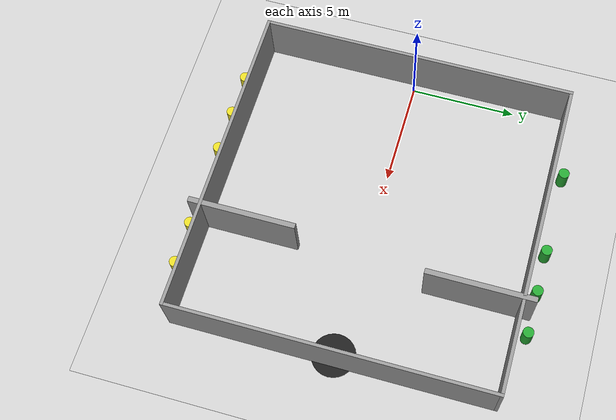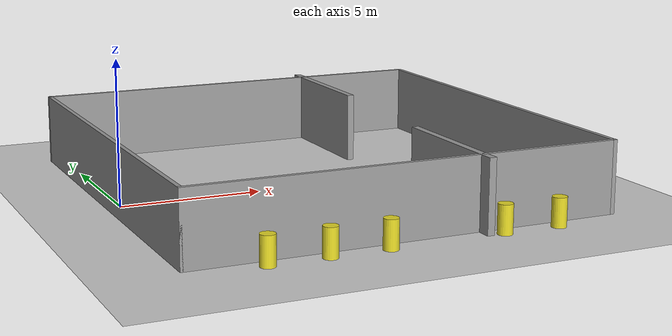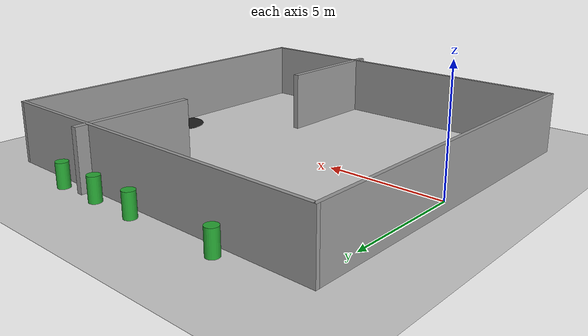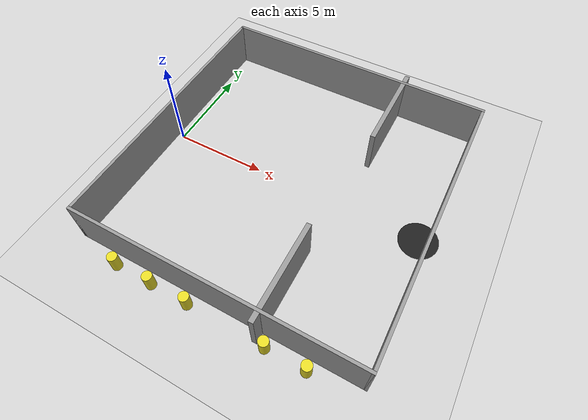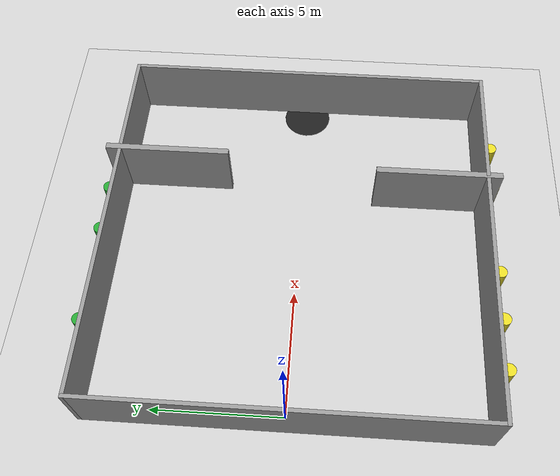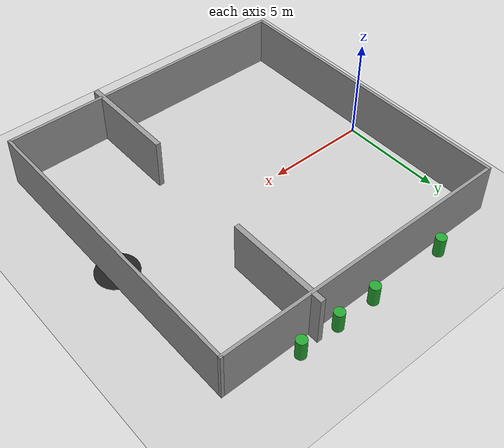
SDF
<sdf version="1.7">
 <world name="default">
  <gravity>0 0 -9.8</gravity>
  <magnetic_field>6e-06 2.3e-05 -4.2e-05</magnetic_field>
  <atmosphere type="adiabatic"/>
  <scene><ambient>0.4 0.4 0.4 1</ambient><background>0.7 0.7 0.7 1</background><shadows>0</shadows></scene>
  <audio><device>default</device></audio>
  <spherical_coordinates>
   <surface_model>EARTH_WGS84</surface_model>
   <latitude_deg>0</latitude_deg>
   <longitude_deg>0</longitude_deg>
   <elevation>0</elevation>
   <heading_deg>0</heading_deg>
  </spherical_coordinates>
  <physics type="ode">
   <max_step_size>0.001</max_step_size>
   <real_time_update_rate>1000.0</real_time_update_rate>
   <real_time_factor>1</real_time_factor>
   <ode>
    <solver>
     <type>quick</type>
     <iters>150</iters>
     <precon_iters>0</precon_iters>
     <sor>1.400000</sor>
     <use_dynamic_moi_rescaling>1</use_dynamic_moi_rescaling>
    </solver>
    <constraints>
     <cfm>0.00001</cfm>
     <erp>0.2</erp>
     <contact_max_correcting_vel>2000.000000</contact_max_correcting_vel>
     <contact_surface_layer>0.01000</contact_surface_layer>
    </constraints>
   </ode>
  </physics>
  <plugin name="gazebo_ros_state" filename="libgazebo_ros_state.so">
   <ros>
    <namespace>/gazebo_drl</namespace>
    <argument>model_states:=model_states_plug</argument>
    <argument>link_states:=link_states_plug</argument>
   </ros>
   <update_rate>30.0</update_rate>
  </plugin>
  <include><uri>model://sun</uri></include>
  <include><uri>model://ground_plane</uri></include>
  <include><uri>model://goal_area</uri><pose>14.0 0.0 0.0 0 0 0</pose></include>
  <include><uri>model://stage_4//wall_outler</uri><pose>7.0 0.0 0.0 0 0 0</pose></include>
  <include><uri>model://stage_4//wall_single_5m_2</uri><pose>10.0 5.5 0.0 0 0 1.5708</pose></include>
  <include><uri>model://stage_4//wall_single_5m_3</uri><pose>9.5 -5.5 0.0 0 0 1.5708</pose></include>
  <include>
   <uri>model://cylinder_obstacle_3</uri>
   <name>cylinder_obstacle_2</name>
   <pose>11.0 8.0 0.5 0.0 0.0 -1.5708</pose>
  </include>
  <include>
   <uri>model://cylinder_obstacle_3</uri>
   <name>cylinder_obstacle_3</name>
   <pose>9.0 8.0 0.5 0.0 0.0 -1.5708</pose>
  </include>
  <include>
   <uri>model://cylinder_obstacle_3</uri>
   <name>cylinder_obstacle_4</name>
   <pose>7.0 8.0 0.5 0.0 0.0 -1.5708</pose>
  </include>
  <include>
   <uri>model://cylinder_obstacle_3</uri>
   <name>cylinder_obstacle_6</name>
   <pose>3.0 8.0 0.5 0.0 0.0 -1.5708</pose>
  </include>
  <include>
   <uri>model://cylinder_obstacle_4</uri>
   <name>cylinder_obstacle_8</name>
   <pose>12.0 -8.0 0.5 0.0 0.0 1.5708</pose>
  </include>
  <include>
   <uri>model://cylinder_obstacle_4</uri>
   <name>cylinder_obstacle_9</name>
   <pose>10.0 -8.0 0.5 0.0 0.0 1.5708</pose>
  </include>
  <include>
   <uri>model://cylinder_obstacle_4</uri>
   <name>cylinder_obstacle_11</name>
   <pose>6.0 -8.0 0.5 0.0 0.0 1.5708</pose>
  </include>
  <include>
   <uri>model://cylinder_obstacle_4</uri>
   <name>cylinder_obstacle_12</name>
   <pose>4.0 -8.0 0.5 0.0 0.0 1.5708</pose>
  </include>
  <include>
   <uri>model://cylinder_obstacle_4</uri>
   <name>cylinder_obstacle_13</name>
   <pose>2.0 -8.0 0.5 0.0 0.0 1.5708</pose>
  </include>
 </world>
</sdf>

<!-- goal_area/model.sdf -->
<sdf version='1.7'>
  <model name='goal_area'>
    <link name='link_1'>
      <inertial>
        <mass>1</mass>
        <inertia>
          <ixx>0.145833</ixx>
          <ixy>0</ixy>
          <ixz>0</ixz>
          <iyy>0.145833</iyy>
          <iyz>0</iyz>
          <izz>0.125</izz>
        </inertia>
        <pose>0 0 0 0 -0 0</pose>
      </inertial>
      <pose>-0 0 0 0 -0 0</pose>
      <gravity>1</gravity>
      <self_collide>0</self_collide>
      <kinematic>0</kinematic>
      <enable_wind>0</enable_wind>
      <visual name='visual'>
        <pose>0 0 0 0 -0 0</pose>
        <geometry>
          <cylinder>
            <radius>1.0</radius>
            <length>0.01</length>
          </cylinder>
        </geometry>
        <material>
          <script>
            <uri>file://media/materials/scripts/gazebo.material</uri>
            <name>Gazebo/Black</name>
          </script>
        </material>
        <transparency>0</transparency>
        <cast_shadows>0</cast_shadows>
      </visual>
      <collision name='collision'>
        <laser_retro>0</laser_retro>
        <max_contacts>10</max_contacts>
        <pose>0 0 0 0 -0 0</pose>
        <geometry>
          <cylinder>
            <radius>0.001</radius>
            <length>0.001</length>
          </cylinder>
        </geometry>
        <surface>
          <friction>
            <ode>
              <mu>1</mu>
              <mu2>1</mu2>
              <fdir1>0 0 0</fdir1>
              <slip1>0</slip1>
              <slip2>0</slip2>
            </ode>
            <torsional>
              <coefficient>1</coefficient>
              <patch_radius>0</patch_radius>
              <surface_radius>0</surface_radius>
              <use_patch_radius>1</use_patch_radius>
              <ode>
                <slip>0</slip>
              </ode>
            </torsional>
          </friction>
          <bounce>
            <restitution_coefficient>0</restitution_coefficient>
            <threshold>1e+06</threshold>
          </bounce>
          <contact>
            <collide_without_contact>0</collide_without_contact>
            <collide_without_contact_bitmask>1</collide_without_contact_bitmask>
            <collide_bitmask>1</collide_bitmask>
            <ode>
              <soft_cfm>0</soft_cfm>
              <soft_erp>0.2</soft_erp>
              <kp>1e+13</kp>
              <kd>1</kd>
              <max_vel>0.01</max_vel>
              <min_depth>0</min_depth>
            </ode>
            <bullet>
              <split_impulse>1</split_impulse>
              <split_impulse_penetration_threshold>-0.01</split_impulse_penetration_threshold>
              <soft_cfm>0</soft_cfm>
              <soft_erp>0.2</soft_erp>
              <kp>1e+13</kp>
              <kd>1</kd>
            </bullet>
          </contact>
        </surface>
      </collision>
    </link>
    <static>0</static>
    <allow_auto_disable>1</allow_auto_disable>
  </model>
</sdf>

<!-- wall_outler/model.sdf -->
<sdf version='1.7'>
  <model name='wall_outler'>
    <pose>0 0 0 0 -0 0</pose>
    <link name='Wall_1'>
      <collision name='Wall_1_Collision'>
        <geometry>
          <box>
            <size>15 0.15 2.5</size>
          </box>
        </geometry>
        <pose>0 0 1.25 0 -0 0</pose>
      </collision>
      <visual name='Wall_1_Visual'>
        <pose>0 0 1.25 0 -0 0</pose>
        <geometry>
          <box>
            <size>15 0.15 2.5</size>
          </box>
        </geometry>
        <material>
          <script>
            <uri>file://media/materials/scripts/gazebo.material</uri>
            <name>Gazebo/Grey</name>
          </script>
          <ambient>1 1 1 1</ambient>
        </material>
        <meta>
          <layer>0</layer>
        </meta>
      </visual>
      <pose>-0 -7.425 0 0 -0 0</pose>
    </link>
    <link name='Wall_2'>
      <collision name='Wall_2_Collision'>
        <geometry>
          <box>
            <size>15 0.15 2.5</size>
          </box>
        </geometry>
        <pose>0 0 1.25 0 -0 0</pose>
      </collision>
      <visual name='Wall_2_Visual'>
        <pose>0 0 1.25 0 -0 0</pose>
        <geometry>
          <box>
            <size>15 0.15 2.5</size>
          </box>
        </geometry>
        <material>
          <script>
            <uri>file://media/materials/scripts/gazebo.material</uri>
            <name>Gazebo/Grey</name>
          </script>
          <ambient>1 1 1 1</ambient>
        </material>
        <meta>
          <layer>0</layer>
        </meta>
      </visual>
      <pose>7.425 -0 0 0 -0 1.5708</pose>
    </link>
    <link name='Wall_3'>
      <collision name='Wall_3_Collision'>
        <geometry>
          <box>
            <size>15 0.15 2.5</size>
          </box>
        </geometry>
        <pose>0 0 1.25 0 -0 0</pose>
      </collision>
      <visual name='Wall_3_Visual'>
        <pose>0 0 1.25 0 -0 0</pose>
        <geometry>
          <box>
            <size>15 0.15 2.5</size>
          </box>
        </geometry>
        <material>
          <script>
            <uri>file://media/materials/scripts/gazebo.material</uri>
            <name>Gazebo/Grey</name>
          </script>
          <ambient>1 1 1 1</ambient>
        </material>
        <meta>
          <layer>0</layer>
        </meta>
      </visual>
      <pose>-0 7.425 0 0 -0 3.14159</pose>
    </link>
    <link name='Wall_4'>
      <collision name='Wall_4_Collision'>
        <geometry>
          <box>
            <size>15 0.15 2.5</size>
          </box>
        </geometry>
        <pose>0 0 1.25 0 -0 0</pose>
      </collision>
      <visual name='Wall_4_Visual'>
        <pose>0 0 1.25 0 -0 0</pose>
        <geometry>
          <box>
            <size>15 0.15 2.5</size>
          </box>
        </geometry>
        <material>
          <script>
            <uri>file://media/materials/scripts/gazebo.material</uri>
            <name>Gazebo/Grey</name>
          </script>
          <ambient>1 1 1 1</ambient>
        </material>
        <meta>
          <layer>0</layer>
        </meta>
      </visual>
      <pose>-7.425 -0 0 0 -0 -1.5708</pose>
    </link>
    <static>1</static>
  </model>
</sdf>

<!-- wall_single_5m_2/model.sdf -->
<sdf version='1.7'>
  <model name='wall_single_5m_2'>
    <pose>3.0 5.5 0.0 0 0 1.5708</pose>
    <link name='Wall_0'>
      <collision name='Wall_0_Collision'>
        <geometry>
          <box>
            <size>5 0.25 2.5</size>
          </box>
        </geometry>
        <pose>0 0 1.25 0 -0 0</pose>
      </collision>
      <visual name='Wall_0_Visual'>
        <pose>0 0 1.25 0 -0 0</pose>
        <geometry>
          <box>
            <size>5 0.25 2.5</size>
          </box>
        </geometry>
        <material>
          <script>
            <uri>file://media/materials/scripts/gazebo.material</uri>
            <name>Gazebo/Grey</name>
          </script>
          <ambient>1 1 1 1</ambient>
        </material>
        <meta>
          <layer>0</layer>
        </meta>
      </visual>
      <pose>0 0 0 0 0 0</pose>
    </link>
    <static>1</static>
  </model>
</sdf>

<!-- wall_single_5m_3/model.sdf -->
<sdf version='1.7'>
  <model name='wall_single_5m_3'>
    <pose>2.5 -5.5 0.0 0 0 1.5708</pose>
    <link name='Wall_0'>
      <collision name='Wall_0_Collision'>
        <geometry>
          <box>
            <size>5 0.25 2.5</size>
          </box>
        </geometry>
        <pose>0 0 1.25 0 -0 0</pose>
      </collision>
      <visual name='Wall_0_Visual'>
        <pose>0 0 1.25 0 -0 0</pose>
        <geometry>
          <box>
            <size>5 0.25 2.5</size>
          </box>
        </geometry>
        <material>
          <script>
            <uri>file://media/materials/scripts/gazebo.material</uri>
            <name>Gazebo/Grey</name>
          </script>
          <ambient>1 1 1 1</ambient>
        </material>
        <meta>
          <layer>0</layer>
        </meta>
      </visual>
      <pose>0 0 0 0 0 0</pose>
    </link>
    <static>1</static>
  </model>
</sdf>

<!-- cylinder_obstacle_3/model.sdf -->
<sdf version='1.7'>
  <model name='cylinder_obstacle_3'>
    <link name='link_1'>
      <inertial>
        <mass>1</mass>
        <inertia>
          <ixx>0.098958</ixx>
          <ixy>0</ixy>
          <ixz>0</ixz>
          <iyy>0.098958</iyy>
          <iyz>0</iyz>
          <izz>0.03125</izz>
        </inertia>
        <pose>0 0 0 0 -0 0</pose>
      </inertial>
      <pose>-0 0 0 0 -0 0</pose>
      <gravity>1</gravity>
      <self_collide>0</self_collide>
      <kinematic>1</kinematic>
      <enable_wind>0</enable_wind>
      <visual name='visual'>
        <pose>0 0 0 0 -0 0</pose>
        <geometry>
          <cylinder>
            <radius>0.25</radius>
            <length>1</length>
          </cylinder>
        </geometry>
        <material>
          <script>
            <uri>file://media/materials/scripts/gazebo.material</uri>
            <name>Gazebo/Green</name>
          </script>
        </material>
        <transparency>0</transparency>
        <cast_shadows>1</cast_shadows>
      </visual>
      <collision name='collision'>
        <laser_retro>0</laser_retro>
        <max_contacts>10</max_contacts>
        <pose>0 0 0 0 -0 0</pose>
        <geometry>
          <cylinder>
            <radius>0.25</radius>
            <length>1</length>
          </cylinder>
        </geometry>
        <surface>
          <friction>
            <ode>
              <mu>1</mu>
              <mu2>1</mu2>
              <fdir1>0 0 0</fdir1>
              <slip1>0</slip1>
              <slip2>0</slip2>
            </ode>
            <torsional>
              <coefficient>1</coefficient>
              <patch_radius>0</patch_radius>
              <surface_radius>0</surface_radius>
              <use_patch_radius>1</use_patch_radius>
              <ode>
                <slip>0</slip>
              </ode>
            </torsional>
          </friction>
          <bounce>
            <restitution_coefficient>0</restitution_coefficient>
            <threshold>1e+06</threshold>
          </bounce>
          <contact>
            <collide_without_contact>0</collide_without_contact>
            <collide_without_contact_bitmask>1</collide_without_contact_bitmask>
            <collide_bitmask>1</collide_bitmask>
            <ode>
              <soft_cfm>0</soft_cfm>
              <soft_erp>0.2</soft_erp>
              <kp>1e+13</kp>
              <kd>1</kd>
              <max_vel>0.01</max_vel>
              <min_depth>0</min_depth>
            </ode>
            <bullet>
              <split_impulse>1</split_impulse>
              <split_impulse_penetration_threshold>-0.01</split_impulse_penetration_threshold>
              <soft_cfm>0</soft_cfm>
              <soft_erp>0.2</soft_erp>
              <kp>1e+13</kp>
              <kd>1</kd>
            </bullet>
          </contact>
        </surface>
      </collision>
    </link>
    <static>0</static>
    <allow_auto_disable>1</allow_auto_disable>
  </model>
</sdf>

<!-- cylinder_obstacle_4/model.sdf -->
<sdf version='1.7'>
  <model name='cylinder_obstacle_4'>
    <link name='link_1'>
      <inertial>
        <mass>1</mass>
        <inertia>
          <ixx>0.098958</ixx>
          <ixy>0</ixy>
          <ixz>0</ixz>
          <iyy>0.098958</iyy>
          <iyz>0</iyz>
          <izz>0.03125</izz>
        </inertia>
        <pose>0 0 0 0 -0 0</pose>
      </inertial>
      <pose>-0 0 0 0 -0 0</pose>
      <gravity>1</gravity>
      <self_collide>0</self_collide>
      <kinematic>1</kinematic>
      <enable_wind>0</enable_wind>
      <visual name='visual'>
        <pose>0 0 0 0 -0 0</pose>
        <geometry>
          <cylinder>
            <radius>0.25</radius>
            <length>1</length>
          </cylinder>
        </geometry>
        <material>
          <script>
            <uri>file://media/materials/scripts/gazebo.material</uri>
            <name>Gazebo/Yellow</name>
          </script>
        </material>
        <transparency>0</transparency>
        <cast_shadows>1</cast_shadows>
      </visual>
      <collision name='collision'>
        <laser_retro>0</laser_retro>
        <max_contacts>10</max_contacts>
        <pose>0 0 0 0 -0 0</pose>
        <geometry>
          <cylinder>
            <radius>0.25</radius>
            <length>1</length>
          </cylinder>
        </geometry>
        <surface>
          <friction>
            <ode>
              <mu>1</mu>
              <mu2>1</mu2>
              <fdir1>0 0 0</fdir1>
              <slip1>0</slip1>
              <slip2>0</slip2>
            </ode>
            <torsional>
              <coefficient>1</coefficient>
              <patch_radius>0</patch_radius>
              <surface_radius>0</surface_radius>
              <use_patch_radius>1</use_patch_radius>
              <ode>
                <slip>0</slip>
              </ode>
            </torsional>
          </friction>
          <bounce>
            <restitution_coefficient>0</restitution_coefficient>
            <threshold>1e+06</threshold>
          </bounce>
          <contact>
            <collide_without_contact>0</collide_without_contact>
            <collide_without_contact_bitmask>1</collide_without_contact_bitmask>
            <collide_bitmask>1</collide_bitmask>
            <ode>
              <soft_cfm>0</soft_cfm>
              <soft_erp>0.2</soft_erp>
              <kp>1e+13</kp>
              <kd>1</kd>
              <max_vel>0.01</max_vel>
              <min_depth>0</min_depth>
            </ode>
            <bullet>
              <split_impulse>1</split_impulse>
              <split_impulse_penetration_threshold>-0.01</split_impulse_penetration_threshold>
              <soft_cfm>0</soft_cfm>
              <soft_erp>0.2</soft_erp>
              <kp>1e+13</kp>
              <kd>1</kd>
            </bullet>
          </contact>
        </surface>
      </collision>
    </link>
    <static>0</static>
    <allow_auto_disable>1</allow_auto_disable>
  </model>
</sdf>
